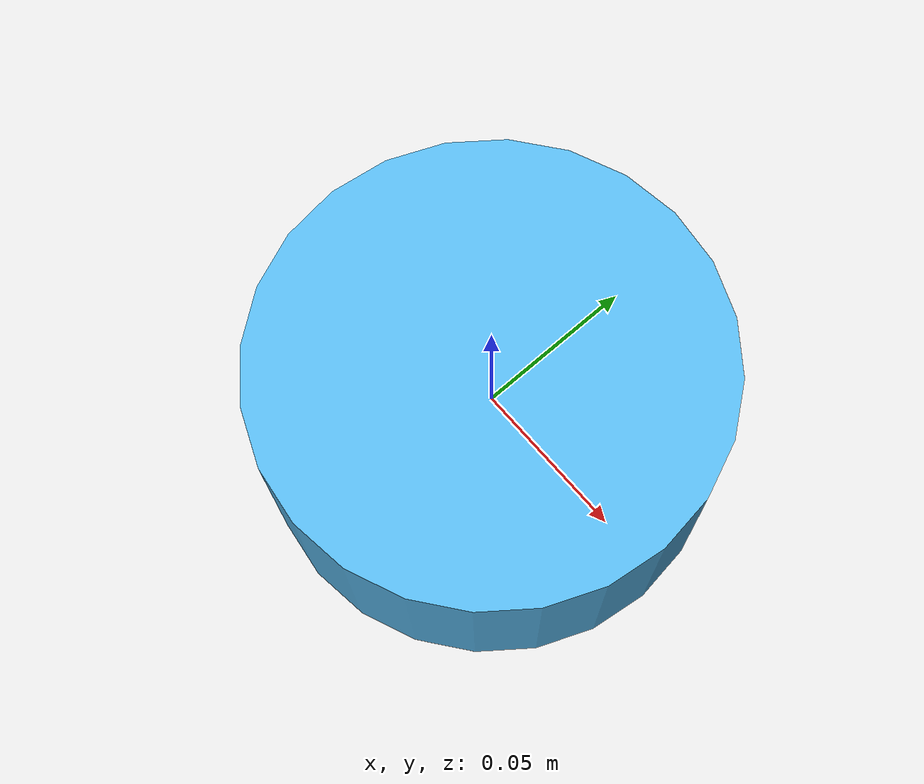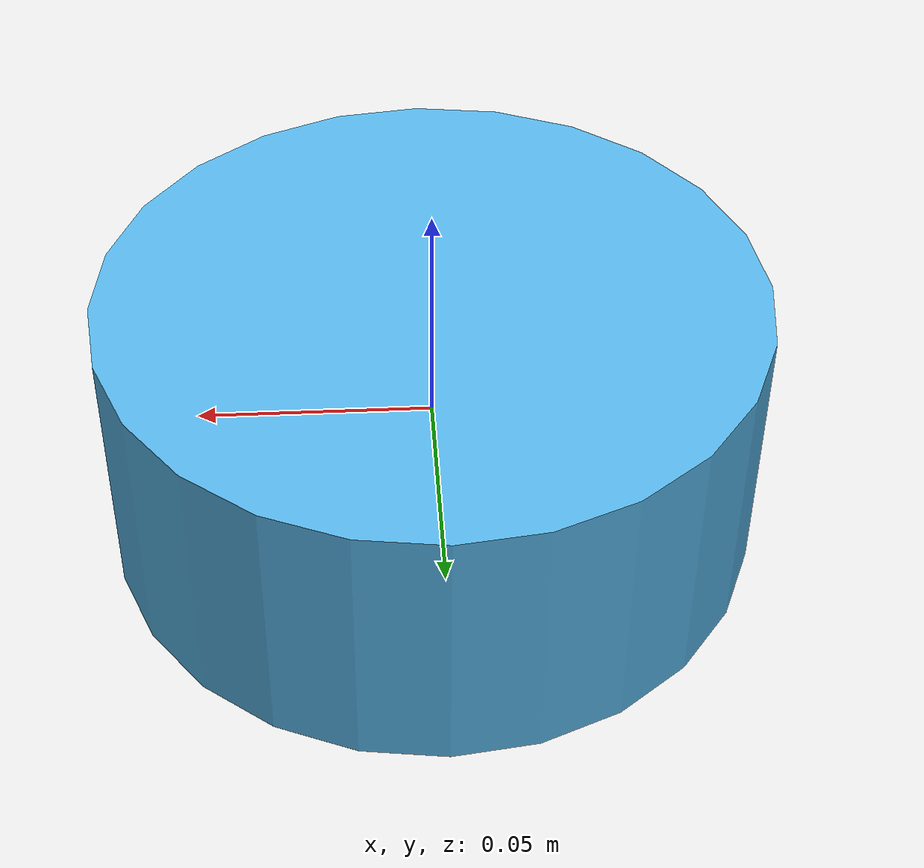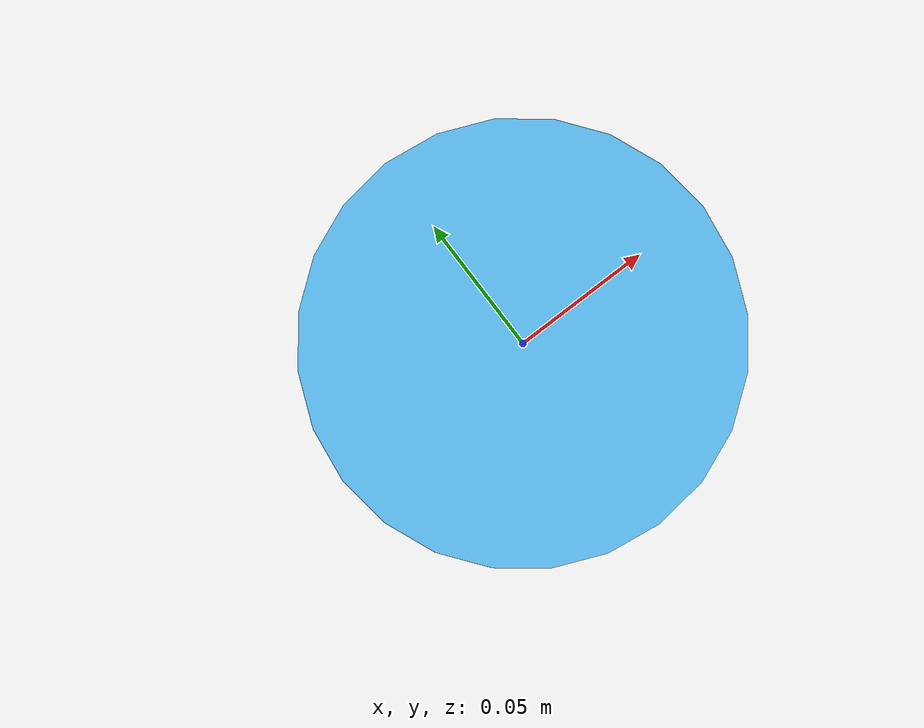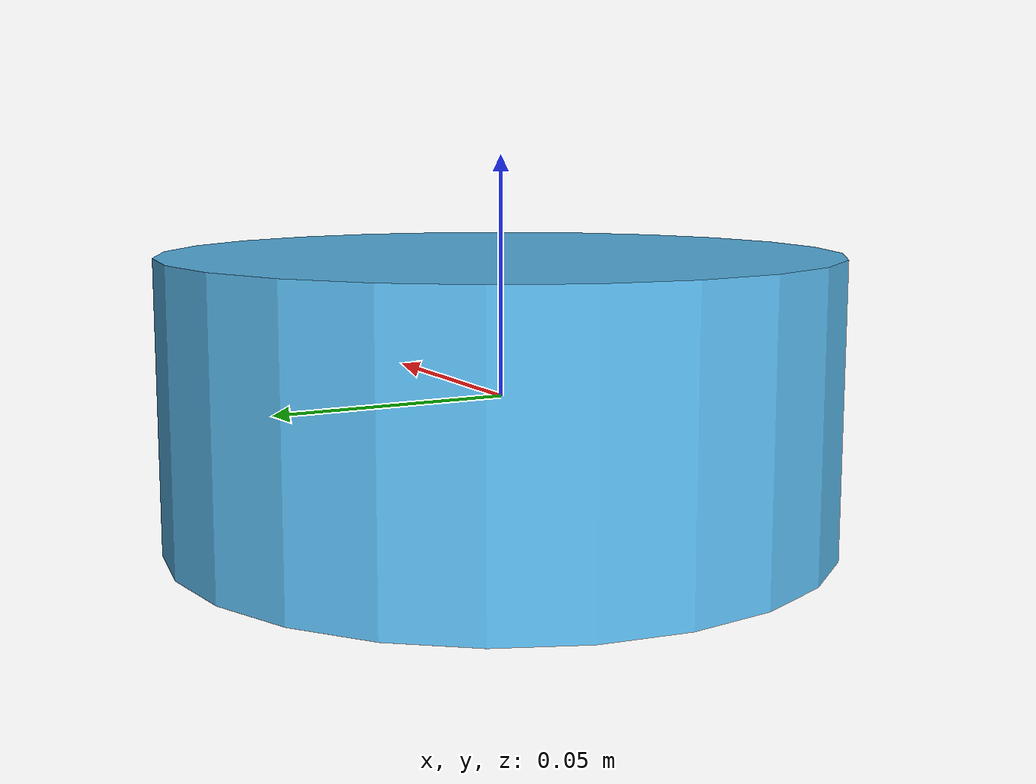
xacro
<?xml version="1.0"?>
<robot xmlns:xacro="http://ros.org/wiki/xacro">

  <xacro:property name="M_PI" value="3.14159" />
  <xacro:property name="laser_min_range" value="0.3" />
  <xacro:property name="laser_max_range" value="200.0" />
  <xacro:property name="ros_topic" value="livox/lidar" />
  <xacro:property name="samples" value="24000" />
  <xacro:property name="downsample" value="1" />

  <xacro:macro name="null_inertial">
    <inertial>
      <mass value="0.001" />
      <inertia ixx="0.001" ixy="0" ixz="0"
        iyy="0.001" iyz="0"
        izz="0.001" />
    </inertial>
  </xacro:macro>

  <xacro:macro name="Livox_Mid_gazebo_sensor"
    params="visualize:=True update_rate:=10 resolution:=0.002 noise_mean:=0.0 noise_stddev:=0.01 name:=livox">
    <gazebo reference="${name}">
      <sensor type="ray" name="laser_${name}">
        <pose>0 0 0 0 0 0</pose>
        <visualize>${visualize}</visualize>
        <update_rate>${update_rate}</update_rate>
        <!-- This ray plgin is only for visualization. -->
        <plugin name="gazebo_ros_laser_controller"
          filename="liblivox_laser_simulation_custom_stable.so">
          <ray>
            <scan>
              <horizontal>
                <samples>100</samples>
                <resolution>1</resolution>
                <min_angle>${0}</min_angle>
                <max_angle>${2*M_PI}</max_angle>
              </horizontal>
              <vertical>
                <samples>360</samples>
                <resolution>1</resolution>
                <min_angle>${-7.22/180*M_PI}</min_angle>
                <max_angle>${55.22/180*M_PI}</max_angle>
              </vertical>
            </scan>
            <range>
              <min>${laser_min_range}</min>
              <max>${laser_max_range}</max>
              <resolution>${resolution}</resolution>
            </range>
            <noise>
              <type>gaussian</type>
              <mean>${noise_mean}</mean>
              <stddev>${noise_stddev}</stddev>
            </noise>
          </ray>
          <visualize>${visualize}</visualize>
          <samples>${samples}</samples>
          <downsample>${downsample}</downsample>
          <csv_file_name>package://vehicle_simulator/scan_mode/mid360.csv</csv_file_name>
          <ros_topic>${ros_topic}</ros_topic>
        </plugin>
      </sensor>
    </gazebo>
  </xacro:macro>

  <xacro:macro name="Livox_Mid40" params="visualize:=True name:=livox">
    <link name="${name}">
      <xacro:null_inertial />
    </link>
    <link name="${name}_base">
      <visual>
        <origin xyz="0 0 0" rpy="0 0 0" />
        <geometry>
          <cylinder radius="0.07" length="0.06" />
        </geometry>
      </visual>
      <collision>
        <origin xyz="0 0 0" rpy="0 0 0" />
        <geometry>
          <mesh
            filename="package://vehicle_simulator/mesh/livox_mid40.dae">
          </mesh>
        </geometry>
      </collision>
      <xacro:null_inertial />
    </link>
    <joint name="${name}_to_${name}_base_joint" type="fixed">
      <parent link="${name}_base" />
      <child link="${name}" />
      <origin rpy="0 0 0" xyz="0.0 0 0.2" />
    </joint>

    <xacro:Livox_Mid_gazebo_sensor name="${name}" visualize="${visualize}" />
  </xacro:macro>

  <xacro:Livox_Mid40 name="mid360" visualize="true" />
</robot>
